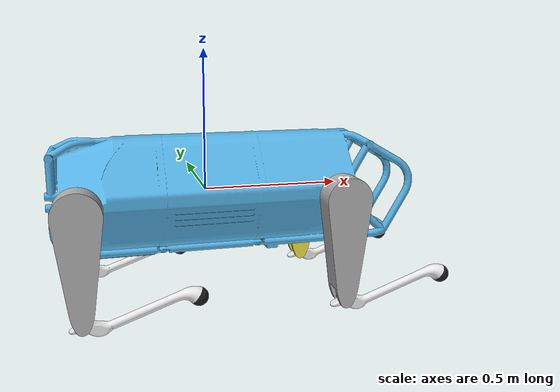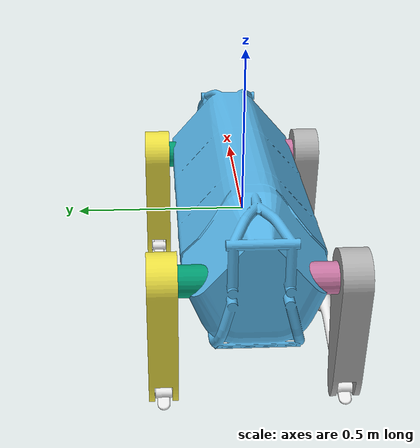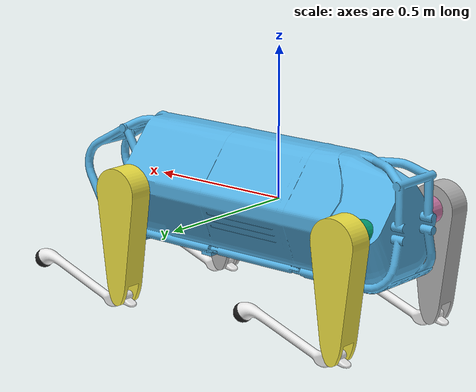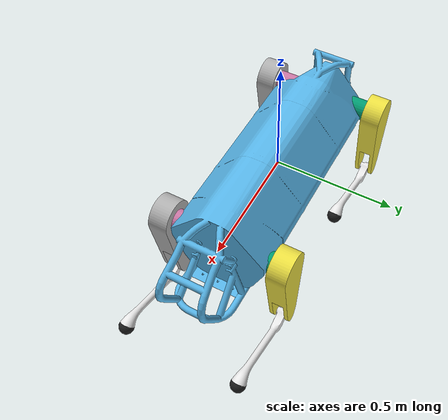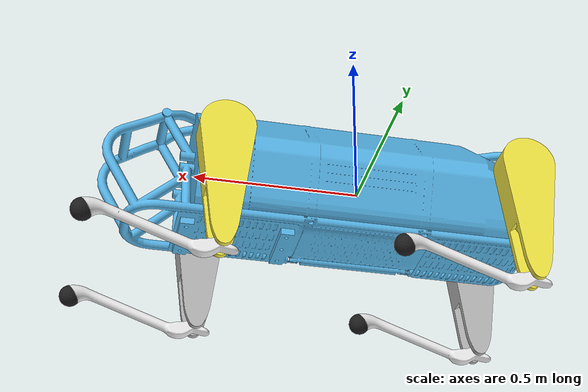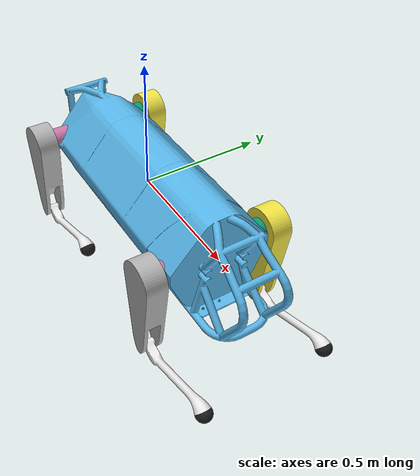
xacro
<?xml version="1.0"?>

<robot name="hyqreal" xmlns:xacro="http://ros.org/wiki/xacro">

	<!-- This argument allows us to load joint sensors that measure the internal wrenches -->
	<xacro:arg name="load_force_sensors" default="false"/>
        <xacro:arg name="sensors" default="false"/>

	<!-- The following included files set up definitions of parts of the robot body -->
	<xacro:include filename="$(find hyqreal_description)/urdfs/common.xacro"/>

	<!-- hyqreal torso -->
	<xacro:include filename="$(find hyqreal_description)/urdfs/trunk/trunk.urdf.xacro"/>

	<!-- hyqreal legs -->
	<xacro:include filename="$(find hyqreal_description)/urdfs/leg/leg.urdf.xacro"/>
	<!-- hyqreal sensors -->
        <xacro:if value="$(arg sensors)">
          <xacro:include filename="$(find sensors_description)/urdfs/common.xacro"/>
          <xacro:include filename="$(find sensors_description)/urdfs/sensors/kvh_1775_imu.urdf.xacro"/>
          <xacro:include filename="$(find sensors_description)/urdfs/sensors/multisense_sl.urdf.xacro"/>
          <xacro:include filename="$(find sensors_description)/urdfs/sensors/asus_xtion.urdf.xacro"/>
        </xacro:if>

	<!-- Generic simulator_gazebo plugins for starting mechanism control, ros time -->
	<xacro:include filename="$(find hyqreal_description)/gazebo/gazebo.urdf.xacro"/>

	<!-- Now we can start using the macros included above to define the actual hyqreal -->

	<!-- Body -->
	<!-- Trunk -->
	<xacro:hyqreal_trunk name="base">
	</xacro:hyqreal_trunk>

	<!-- LF leg -->
	<xacro:hyqreal_leg
		name="lf"
		parent="trunk"
		reflect_left="1"
		reflect_front="1"
		knee_bent_backward="1"
		load_force_sensors="$(arg load_force_sensors)">
		<origin xyz="${haa_fh/2} ${haa_lr/2} 0" rpy="${PI} ${PI/2} 0"/>
	</xacro:hyqreal_leg>

	<!-- RF leg -->
	<xacro:hyqreal_leg
		name="rf"
		parent="trunk"
		reflect_left="-1"
		reflect_front="1"
		knee_bent_backward="1"
		load_force_sensors="$(arg load_force_sensors)">
		<origin xyz="${haa_fh/2} ${-haa_lr/2} 0" rpy="0 ${PI/2} 0"/>
	</xacro:hyqreal_leg>

	<!-- LH leg -->
	<xacro:hyqreal_leg
		name="lh"
		parent="trunk"
		reflect_left="1"
		reflect_front="1"
		knee_bent_backward="1"
		load_force_sensors="$(arg load_force_sensors)">
		<origin xyz="${-haa_fh/2} ${haa_lr/2} 0" rpy="${PI} ${PI/2} 0"/>

	</xacro:hyqreal_leg>

	<!-- RH leg -->
	<xacro:hyqreal_leg
		name="rh"
		parent="trunk"
		reflect_left="-1"
		reflect_front="1"
		knee_bent_backward="1"
		load_force_sensors="$(arg load_force_sensors)">
		<origin xyz="${-haa_fh/2} ${-haa_lr/2} 0" rpy="0 ${PI/2} 0"/>

	</xacro:hyqreal_leg>

	<!-- IMU trunk -->
        <xacro:if value="$(arg sensors)">
        <xacro:kvh_1775_imu
            parent="trunk"
            imu_name="trunk_imu"
            imu_topic="trunk_imu/data"
            update_rate="250">
		<!-- transformation from base_link to imu mount point is: -->
		<origin xyz="-0.1098 0 -0.045" rpy="${PI} 0 0"/>
		<!-- transformation from base_link to average sensing point should be: -->
	        <!--origin xyz="-0.126867 0.013 -0.083367" rpy="${PI} 0 0"/-->
        </xacro:kvh_1775_imu>
        </xacro:if>

</robot>

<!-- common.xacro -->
<robot xmlns:xacro="http://ros.org/wiki/xacro">
	<xacro:property name="PI" value="3.1415926535897931"/>

	<!-- standard distances -->

	<xacro:property name="haa_lr" value="0.278"/>
	<xacro:property name="haa_fh" value="0.887"/>

	<!-- kin limits (sign ref is RH leg)-->
	<xacro:property name="haa_max" value="23"/>
	<xacro:property name="haa_min" value="-42"/>
	<xacro:property name="hfe_max" value="135"/>
	<xacro:property name="hfe_min" value="-135"/>
	<xacro:property name="kfe_max" value="158.71"/>
	<xacro:property name="kfe_min" value="38.38"/>

        <!-- torque limits 120-->
        <xacro:property name="haa_limit" value="173.0"/>
        <xacro:property name="hfe_limit" value="208"/>
        <xacro:property name="kfe_limit" value="249"/>

	<xacro:property name="trunkScale_width" value="${haa_lr/0.194}"/>
	<xacro:property name="trunkScale_length" value="${haa_fh/0.887}"/>

	<xacro:property name="hipassembly_length" value="0.117"/>
	<xacro:property name="upperleg_length" value="0.360"/>
	<xacro:property name="lowerleg_length" value="0.380"/>

	<!-- Knee offset angel in degree -->
	<xacro:property name="knee_offset_angle" value="-5.5"/>

	<!-- Inertial values -->
	<!-- Trunk with hydraulic system -->
	<xacro:property name="xcom_trunk" value=" 0.0149"/>
	<xacro:property name="ycom_trunk" value=" -0.00186"/>
	<xacro:property name="zcom_trunk" value="-0.034650"/>

        <!-- this mass is wothout HPUs and without batteries -->
        <xacro:property name="m_trunk" value="59.8"/>

	<xacro:property name="ixx_trunk" value="1.498728"/>
	<xacro:property name="iyy_trunk" value="9.492381"/>
	<xacro:property name="izz_trunk" value="9.012359"/>

	<xacro:property name="ixy_trunk" value="-0.007369"/>
	<xacro:property name="ixz_trunk" value="-0.189135"/>
	<xacro:property name="iyz_trunk" value=" 0.000185"/>

	<!-- Hip assembly -->
	<xacro:property name="xcom_hipassembly" value="-0.010027"/>
	<xacro:property name="ycom_hipassembly" value="-0.010608"/>
	<xacro:property name="zcom_hipassembly" value=" 0.003644"/>
	<xacro:property name="m_hipassembly" value="4.973275"/>
	<xacro:property name="ixx_hipassembly" value=" 0.011231"/>
	<xacro:property name="iyy_hipassembly" value=" 0.015768"/>
	<xacro:property name="izz_hipassembly" value=" 0.016863"/>
	<xacro:property name="ixy_hipassembly" value="-0.000592"/>
	<xacro:property name="ixz_hipassembly" value=" 0.000225"/>
	<xacro:property name="iyz_hipassembly" value=" 0.000224"/>

	<!-- Upper leg -->
	<xacro:property name="xcom_upperleg" value="0.107987"/>
	<xacro:property name="ycom_upperleg" value="-0.011459"/>
	<xacro:property name="zcom_upperleg" value="-0.002121"/>
	<xacro:property name="m_upperleg"    value="5.877927"/>
	<xacro:property name="ixx_upperleg" value="0.016432"/>
	<xacro:property name="iyy_upperleg" value="0.075737"/>
	<xacro:property name="izz_upperleg" value="0.079267"/>
	<xacro:property name="ixy_upperleg" value="0.001863"/>
	<xacro:property name="ixz_upperleg" value="0.003897"/>
	<xacro:property name="iyz_upperleg" value="-0.000240"/>

	<!-- Lower leg -->
	<xacro:property name="xcom_lowerleg" value="0.149302"/>
	<xacro:property name="ycom_lowerleg" value="-0.003801"/>
	<xacro:property name="zcom_lowerleg" value="-0.000624"/>
	<xacro:property name="m_lowerleg" value="1.291954"/>
	<xacro:property name="ixx_lowerleg" value="0.001088"/>
	<xacro:property name="iyy_lowerleg" value="0.029215"/>
	<xacro:property name="izz_lowerleg" value="0.029772"/>
	<xacro:property name="ixy_lowerleg" value="-0.000572"/>
	<xacro:property name="ixz_lowerleg" value=" 0.000118"/>
	<xacro:property name="iyz_lowerleg" value=" 0.000460"/>
</robot>

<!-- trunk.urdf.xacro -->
<robot xmlns:xacro="http://ros.org/wiki/xacro">

	<!-- Things that are needed only for Gazebo (not the physical robot). These include sensor and controller plugin specifications -->
	<xacro:include filename="$(find hyqreal_description)/urdfs/trunk/trunk.gazebo.xacro"/>

	<!-- ================================ Trunk ================================ -->
	<!-- The xacro macro xacro:hyq_base contains: base and trunk -->
	<xacro:macro name="hyqreal_trunk" params="name">
		<!-- Floating-base Joint -->
		<joint name="floating_base" type="fixed">
			<origin xyz="0 0 0" rpy="0 0 0"/>
			<parent link="${name}_link"/>
			<child link="trunk"/>
		</joint>

		<!-- Links -->
		<!-- Footprint link -->
		<link name="${name}_link">
			<visual>
				<geometry>
					<cylinder length="0.01" radius="0.01"/>
				</geometry>
			</visual>
		</link>
		<!-- Trunk link -->
		<link name="trunk">
			<inertial>
				<origin xyz="${xcom_trunk} ${ycom_trunk} ${zcom_trunk}"/>
				<mass value="${m_trunk}"/>
				<inertia ixx="${ixx_trunk}" iyy="${iyy_trunk}" izz="${izz_trunk}"
						 ixy="${ixy_trunk}" ixz="${ixz_trunk}" iyz="${iyz_trunk}"/>
			</inertial>
			<visual>
				<origin xyz="0 0 0" rpy="0 0 ${PI}" />
				<geometry>
 					<mesh filename="package://hyqreal_description/meshes/trunk/combined_torso.dae" scale="0.001 0.001 0.001"/>
				</geometry>
			</visual>
			<collision>
				<origin xyz="0 0 0" rpy="0 0 ${PI}" />
				<geometry>
					<mesh filename="package://hyqreal_description/meshes/trunk/combined_torso_decimated.dae" scale="0.001 0.001 0.001"/>
				</geometry>
			</collision>
		</link>

		<!-- Extensions -->
		<xacro:trunk_gazebo name="trunk"/>
	</xacro:macro>

</robot>

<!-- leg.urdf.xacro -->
<robot xmlns:xacro="http://ros.org/wiki/xacro">

	<!-- Things that are needed only for Gazebo (not the physical robot). These include sensor and controller plugin specifications -->
	<xacro:include filename="$(find hyqreal_description)/urdfs/leg/leg.transmission.xacro"/>
	<xacro:include filename="$(find hyqreal_description)/urdfs/leg/leg.gazebo.xacro"/>

	<!-- ================================== Leg ================================== -->
	<!-- The xacro macro xacro:hyqreal_leg contains: hip assembly, upper and lower leg -->
	<xacro:macro name="hyqreal_leg" params="name parent *origin reflect_left reflect_front knee_bent_backward load_force_sensors">
		<!-- Joints -->
		<!-- HAA joint -->
		<joint name="${name}_haa_joint" type="revolute">
			<xacro:insert_block name="origin"/>
			<parent link="${parent}"/>
			<child  link="${name}_hipassembly"/>
			<axis xyz="0 0 1"/>
			<dynamics damping="0.1" friction="0" />
			<limit effort="${haa_limit}" velocity="12.0" lower="${haa_min*PI/180}" upper="${haa_max*PI/180}"/>
			<safety_controller k_position="50" k_velocity="10"
							   soft_lower_limit="${haa_min*PI/180}" soft_upper_limit="${haa_max*PI/180}" />
		</joint>
		<!-- HFE joint -->
		<joint name="${name}_hfe_joint" type="revolute">
			<origin xyz="0 ${-hipassembly_length} 0"
					rpy="${reflect_left*PI/2} 0 0"/>
			<parent link="${name}_hipassembly"/>
			<child  link="${name}_upperleg"/>
			<axis xyz="0 0 1"/>
			<dynamics damping="0.1" friction="0" />
			<limit effort="${hfe_limit}" velocity="12.0" lower="${hfe_min*PI/180}" upper="${hfe_max*PI/180}"/>
			<safety_controller k_position="50" k_velocity="10"
							   soft_lower_limit="${hfe_min*PI/180}" soft_upper_limit="${hfe_max*PI/180}" />
		</joint>
		<!-- KFE joint -->
		<joint name="${name}_kfe_joint" type="revolute">
			<origin xyz="${upperleg_length} 0 0" rpy="0 0 0"/>
			<parent link="${name}_upperleg"/>
			<child  link="${name}_lowerleg"/>
			<axis xyz="0 0 1"/>
			<dynamics damping="0.1" friction="0" />
			<limit effort="${kfe_limit}" velocity="12.0"
		          lower="${(1-knee_bent_backward)*(kfe_min)*PI/180 + (knee_bent_backward)*(-kfe_max)*PI/180}"
                  upper="${(1-knee_bent_backward)*(kfe_max)*PI/180 + (knee_bent_backward)*(-kfe_min)*PI/180}"/>
         		<safety_controller k_position="50.0" k_velocity="10.0"
							   soft_lower_limit="${(1-knee_bent_backward)*(kfe_min)*PI/180 + (knee_bent_backward)*(-kfe_max)*PI/180}"
							   soft_upper_limit="${(1-knee_bent_backward)*(kfe_max)*PI/180 + (knee_bent_backward)*(-kfe_min)*PI/180}"/>
			</joint>
		<!-- Foot joint -->
		<joint name="${name}_foot_joint" type="fixed">
			<origin xyz="${lowerleg_length} 0 0" rpy="${PI/2} 0 ${-PI/2}"/>
			<parent link="${name}_lowerleg"/>
			<child  link="${name}_foot"/>
		</joint>

		<!-- Links -->
		<!-- Hip assembly link -->
		<link name="${name}_hipassembly">
			<inertial>
				<origin xyz="${xcom_hipassembly} ${ycom_hipassembly} ${zcom_hipassembly}"/>
				<mass value="${m_hipassembly}"/>
				<inertia ixx="${ixx_hipassembly}" iyy="${iyy_hipassembly}" izz="${izz_hipassembly}"
						 ixy="${ixy_hipassembly}" ixz="${ixz_hipassembly}" iyz="${iyz_hipassembly}"/>
			</inertial>
			<visual>
				<origin xyz="0 -0.046 0" rpy="0 ${-PI/2} ${-PI/2}"/>
				<geometry> -->
				<cylinder length="0.117" radius="0.0444"/>
				</geometry>
			</visual>
		</link>
		<!-- Upper leg link -->
		<link name="${name}_upperleg">
			<inertial>
				<origin xyz="${xcom_upperleg} ${reflect_front*ycom_upperleg} ${reflect_left*zcom_upperleg}"/>
				<mass value="${m_upperleg}"/>
				<inertia ixx="${ixx_upperleg}" iyy="${iyy_upperleg}" izz="${izz_upperleg}"
						 ixy="${reflect_front*ixy_upperleg}" ixz="${reflect_left*ixz_upperleg}" iyz="${reflect_left*reflect_front*iyz_upperleg}"/>
			</inertial>
			<visual>
				<origin xyz="0 0 0" rpy="0 0 0"/>
				<geometry>
					<mesh filename="package://hyqreal_description/meshes/leg/upperleg.dae" scale="0.001 0.001 0.001"/>
				</geometry>
			</visual>
			<collision>
				<origin xyz="0 0 0" rpy="0 0 0"/>
				<geometry>
					<mesh filename="package://hyqreal_description/meshes/leg/upperleg.dae" scale="0.001 0.001 0.001"/>
				</geometry>
			</collision>
		</link>
		<!-- Lower leg link -->
		<link name="${name}_lowerleg">
			<inertial>
				<origin xyz="${xcom_lowerleg} ${reflect_front*ycom_lowerleg} ${reflect_front*zcom_lowerleg}"/>
				<mass value="${m_lowerleg}"/>
				<inertia ixx="${ixx_lowerleg}" iyy="${iyy_lowerleg}" izz="${izz_lowerleg}"
						 ixy="${reflect_front*ixy_lowerleg}" ixz="${reflect_front*ixz_lowerleg}" iyz="${iyz_lowerleg}"/>
			</inertial>
			<visual>
				<origin xyz="0 0 0" rpy="0 0 0"/>
				<geometry>
					<mesh filename="package://hyqreal_description/meshes/leg/lowerleg.dae" scale="0.001 0.001 0.001"/>
				</geometry>
				<material name="white"/>
			</visual>
			<collision>
				<origin xyz="0 0 0" rpy="0 0 0"/>
				<geometry>
					<mesh filename="package://hyqreal_description/meshes/leg/lowerleg_decimated.dae" scale="0.001 0.001 0.001"/>
				</geometry>
			</collision>
		</link>
		<!-- Foot link -->
		<link name="${name}_foot">
			<visual>
				<origin xyz="0.0 0.0 0.0" rpy="0.0 0.0 0.0"/>
				<geometry>
					<sphere radius="0.032"/>
				</geometry>
                                <material name="black" />
			</visual>
			<collision>
				<origin xyz="0 0 0" rpy="0 0 0"/>
				<geometry>
					<sphere radius="0.032"/>
				</geometry>
			</collision>
		</link>

		<!-- Extensions -->
		<xacro:leg_transmission name="${name}"/>
		<xacro:leg_gazebo name="${name}" load_force_sensors="${load_force_sensors}"/>
	</xacro:macro>

</robot>
